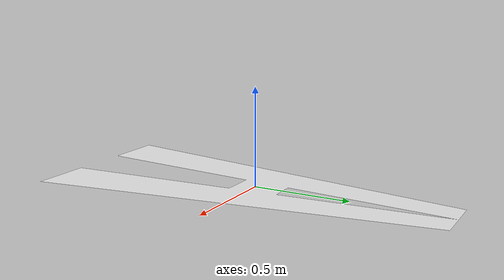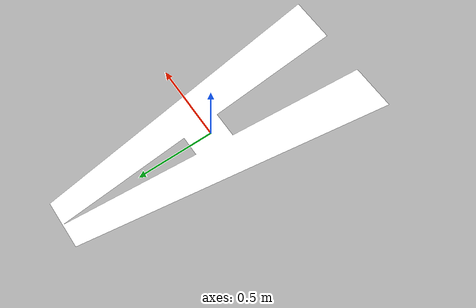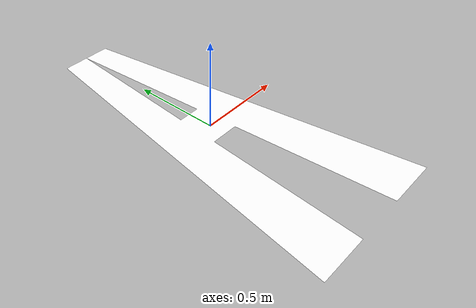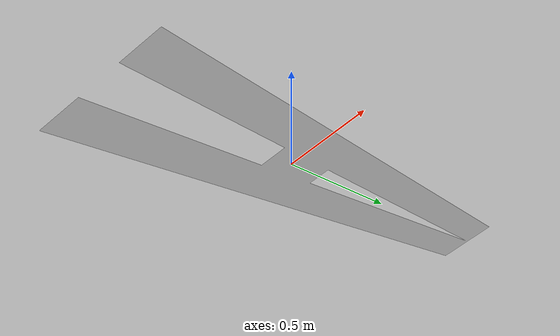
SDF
<?xml version="1.0"?>
<sdf version="1.7">
  <model name="A_letter">
    <static>true</static>
    <link name="A_plate">
      <inertial>
        <mass>1</mass>
        <inertia>
          <ixx>1</ixx>
          <ixy>0</ixy>
          <ixz>0</ixz>
          <iyy>1</iyy>
          <iyz>0</iyz>
          <izz>1</izz>
        </inertia>
      </inertial>

      <collision name="collision">
        <geometry>
          <mesh>
            <uri>meshes/A_letter.dae</uri>
          </mesh>
        </geometry>
        <surface>
          <contact>
            <collide_bitmask>0xffff</collide_bitmask>
          </contact>
          <friction>
            <ode>
              <mu>0.8</mu>
              <mu2>0.8</mu2>
            </ode>
          </friction>
        </surface>
        <laser_retro>10000.0</laser_retro> <!-- Daha yüksek değer -->
      </collision>

      <visual name="visual">
        <geometry>
          <mesh>
            <uri>meshes/A_letter.dae</uri>
          </mesh>
        </geometry>
        <material>
          <ambient>1.0 1.0 1.0 1.0</ambient>
          <diffuse>1.0 1.0 1.0 1.0</diffuse>
          <specular>0.8 0.8 0.8 1.0</specular>
          <emissive>0 0 0 1.0</emissive> <!-- Emissive'i sıfırlayın -->
        </material>
        <laser_retro>50000.0</laser_retro>

      </visual>
    </link>
  </model>
</sdf>
